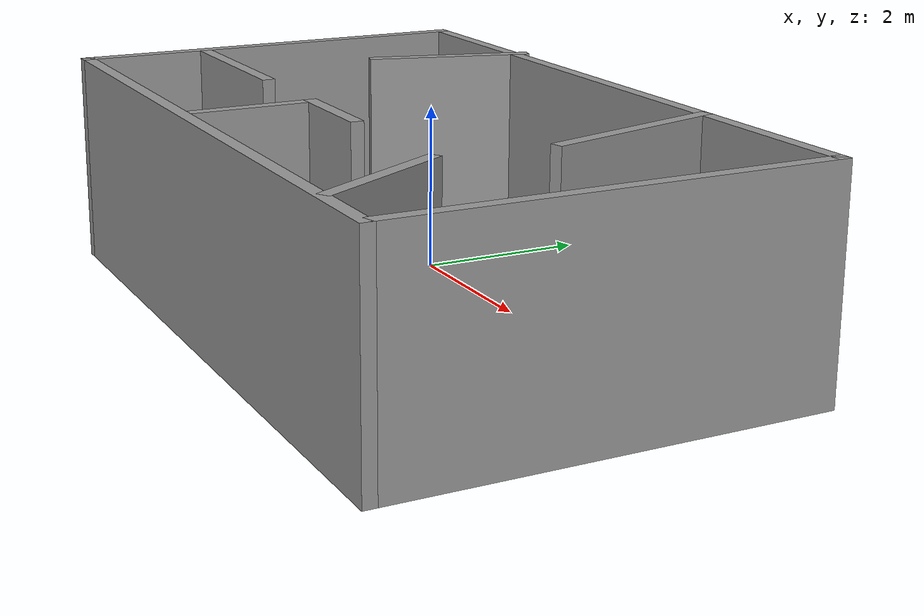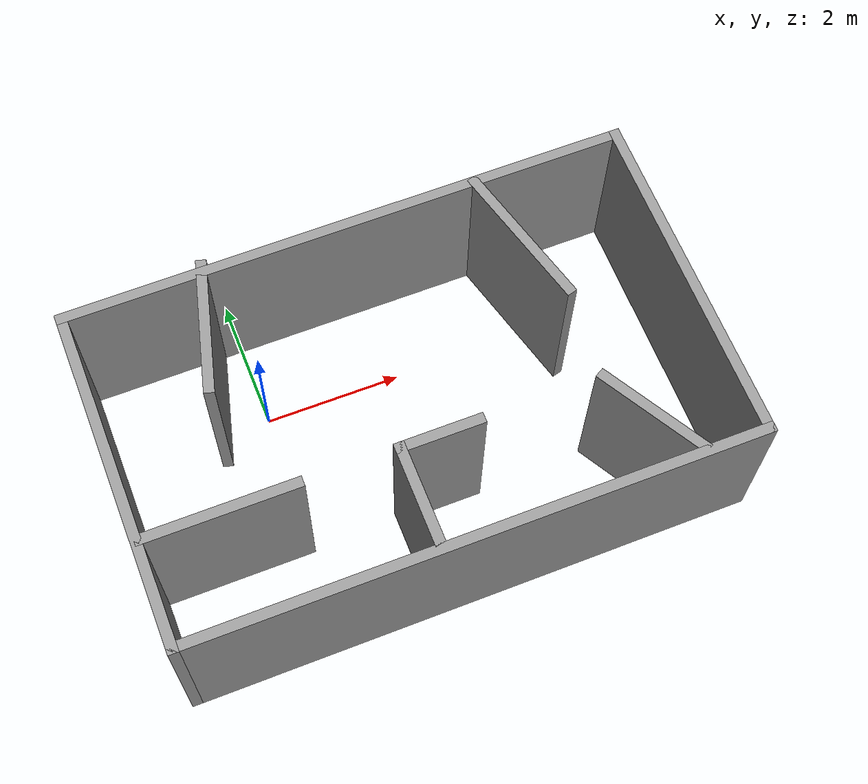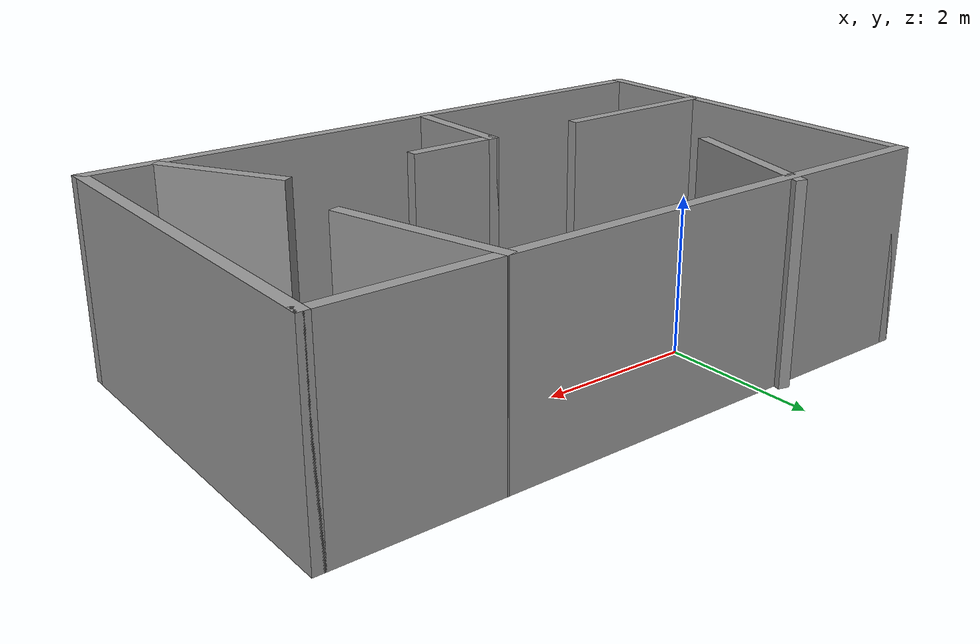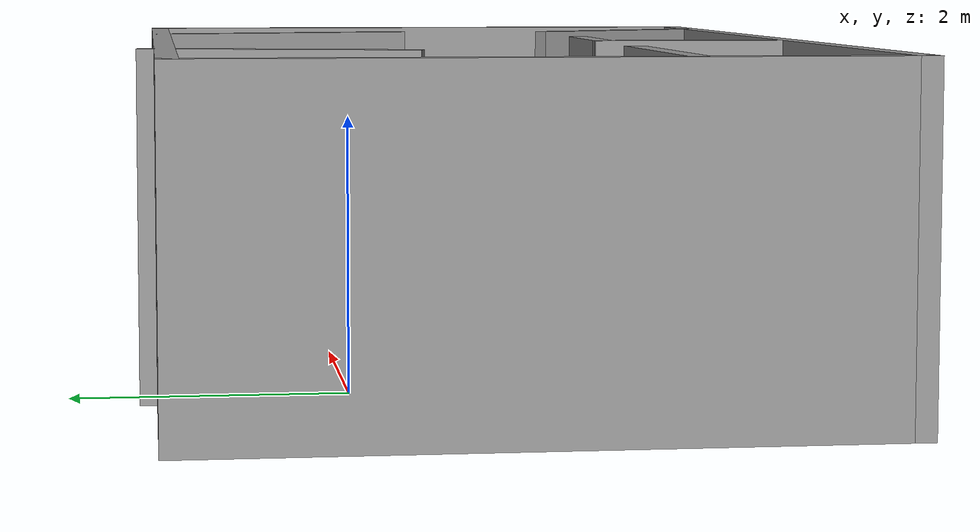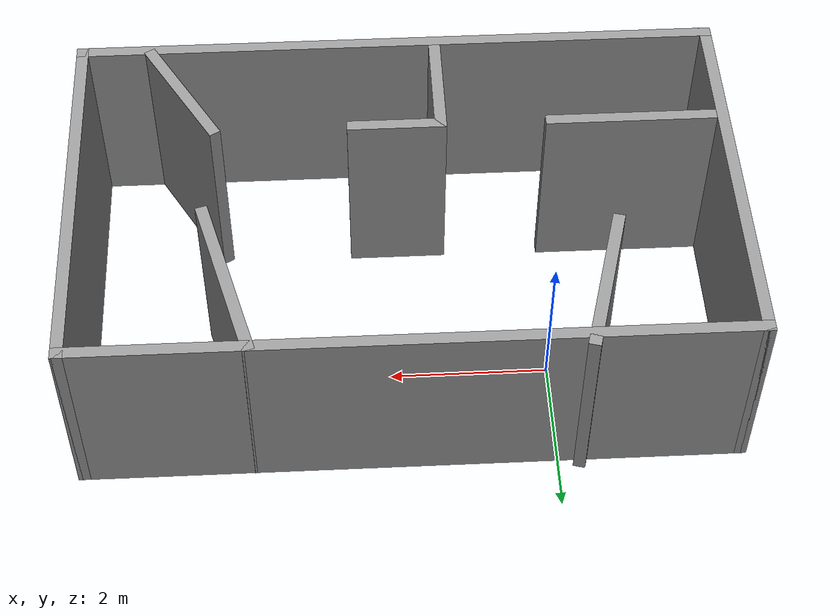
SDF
<?xml version='1.0'?>
<sdf version='1.7'>
  <model name='mcl_world'>
    <gui fullscreen='0'>
      <camera name='user_camera'>
        <pose>-1.87622 -1.88519 2.12467 -0 0.351642 0.72904</pose>
        <view_controller>orbit</view_controller>
        <projection_type>perspective</projection_type>
      </camera>
    </gui>
    <pose>1.77 -1.0638 0 0 -0 0</pose>
    <link name='Wall_0'>
      <collision name='Wall_0_Collision'>
        <geometry>
          <box>
            <size>5 0.15 2.5</size>
          </box>
        </geometry>
        <pose>0 0 1.25 0 -0 0</pose>
      </collision>
      <visual name='Wall_0_Visual'>
        <pose>0 0 1.25 0 -0 0</pose>
        <geometry>
          <box>
            <size>5 0.15 2.5</size>
          </box>
        </geometry>
        <material>
          <script>
            <uri>file://media/materials/scripts/gazebo.material</uri>
            <name>Gazebo/Grey</name>
          </script>
          <ambient>1 1 1 1</ambient>
        </material>
        <meta>
          <layer>0</layer>
        </meta>
      </visual>
      <pose>-4.05 -0.0612 0 0 -0 1.5708</pose>
    </link>
    <link name='Wall_1'>
      <collision name='Wall_1_Collision'>
        <geometry>
          <box>
            <size>8.25 0.15 2.5</size>
          </box>
        </geometry>
        <pose>0 0 1.25 0 -0 0</pose>
      </collision>
      <visual name='Wall_1_Visual'>
        <pose>0 0 1.25 0 -0 0</pose>
        <geometry>
          <box>
            <size>8.25 0.15 2.5</size>
          </box>
        </geometry>
        <material>
          <script>
            <uri>file://media/materials/scripts/gazebo.material</uri>
            <name>Gazebo/Grey</name>
          </script>
          <ambient>1 1 1 1</ambient>
        </material>
        <meta>
          <layer>0</layer>
        </meta>
      </visual>
      <pose>-0 2.3638 0 0 -0 0</pose>
    </link>
    <link name='Wall_10'>
      <collision name='Wall_10_Collision'>
        <geometry>
          <box>
            <size>2.25 0.15 2.5</size>
          </box>
        </geometry>
        <pose>0 0 1.25 0 -0 0</pose>
      </collision>
      <visual name='Wall_10_Visual'>
        <pose>0 0 1.25 0 -0 0</pose>
        <geometry>
          <box>
            <size>2.25 0.15 2.5</size>
          </box>
        </geometry>
        <material>
          <script>
            <uri>file://media/materials/scripts/gazebo.material</uri>
            <name>Gazebo/Grey</name>
          </script>
          <ambient>1 1 1 1</ambient>
        </material>
        <meta>
          <layer>0</layer>
        </meta>
      </visual>
      <pose>2.17602 1.33947 0 0 -0 -1.309</pose>
    </link>
    <link name='Wall_12'>
      <collision name='Wall_12_Collision'>
        <geometry>
          <box>
            <size>1.75 0.15 2.5</size>
          </box>
        </geometry>
        <pose>0 0 1.25 0 -0 0</pose>
      </collision>
      <visual name='Wall_12_Visual'>
        <pose>0 0 1.25 0 -0 0</pose>
        <geometry>
          <box>
            <size>1.75 0.15 2.5</size>
          </box>
        </geometry>
        <material>
          <script>
            <uri>file://media/materials/scripts/gazebo.material</uri>
            <name>Gazebo/Grey</name>
          </script>
          <ambient>1 1 1 1</ambient>
        </material>
        <meta>
          <layer>0</layer>
        </meta>
      </visual>
      <pose>2.75331 -1.71839 0 0 -0 2.0944</pose>
    </link>
    <link name='Wall_14'>
      <collision name='Wall_14_Collision'>
        <geometry>
          <box>
            <size>2.25 0.15 2.5</size>
          </box>
        </geometry>
        <pose>0 0 1.25 0 -0 0</pose>
      </collision>
      <visual name='Wall_14_Visual'>
        <pose>0 0 1.25 0 -0 0</pose>
        <geometry>
          <box>
            <size>2.25 0.15 2.5</size>
          </box>
        </geometry>
        <material>
          <script>
            <uri>file://media/materials/scripts/gazebo.material</uri>
            <name>Gazebo/Grey</name>
          </script>
          <ambient>1 1 1 1</ambient>
        </material>
        <meta>
          <layer>0</layer>
        </meta>
      </visual>
      <pose>-2.94404 -1.00025 0 0 -0 0</pose>
    </link>
    <link name='Wall_2'>
      <collision name='Wall_2_Collision'>
        <geometry>
          <box>
            <size>5 0.15 2.5</size>
          </box>
        </geometry>
        <pose>0 0 1.25 0 -0 0</pose>
      </collision>
      <visual name='Wall_2_Visual'>
        <pose>0 0 1.25 0 -0 0</pose>
        <geometry>
          <box>
            <size>5 0.15 2.5</size>
          </box>
        </geometry>
        <material>
          <script>
            <uri>file://media/materials/scripts/gazebo.material</uri>
            <name>Gazebo/Grey</name>
          </script>
          <ambient>1 1 1 1</ambient>
        </material>
        <meta>
          <layer>0</layer>
        </meta>
      </visual>
      <pose>4.05 -0.0612 0 0 -0 -1.5708</pose>
    </link>
    <link name='Wall_3'>
      <collision name='Wall_3_Collision'>
        <geometry>
          <box>
            <size>8.25 0.15 2.5</size>
          </box>
        </geometry>
        <pose>0 0 1.25 0 -0 0</pose>
      </collision>
      <visual name='Wall_3_Visual'>
        <pose>0 0 1.25 0 -0 0</pose>
        <geometry>
          <box>
            <size>8.25 0.15 2.5</size>
          </box>
        </geometry>
        <material>
          <script>
            <uri>file://media/materials/scripts/gazebo.material</uri>
            <name>Gazebo/Grey</name>
          </script>
          <ambient>1 1 1 1</ambient>
        </material>
        <meta>
          <layer>0</layer>
        </meta>
      </visual>
      <pose>-0 -2.4862 0 0 -0 3.14159</pose>
    </link>
    <link name='Wall_5'>
      <collision name='Wall_5_Collision'>
        <geometry>
          <box>
            <size>2 0.15 2.5</size>
          </box>
        </geometry>
        <pose>0 0 1.25 0 -0 0</pose>
      </collision>
      <visual name='Wall_5_Visual'>
        <pose>0 0 1.25 0 -0 0</pose>
        <geometry>
          <box>
            <size>2 0.15 2.5</size>
          </box>
        </geometry>
        <material>
          <script>
            <uri>file://media/materials/scripts/gazebo.material</uri>
            <name>Gazebo/Grey</name>
          </script>
          <ambient>1 1 1 1</ambient>
        </material>
        <meta>
          <layer>0</layer>
        </meta>
      </visual>
      <pose>-2.29048 1.57586 0 0 -0 -1.8326</pose>
    </link>
    <link name='Wall_7'>
      <collision name='Wall_7_Collision'>
        <geometry>
          <box>
            <size>1.5 0.15 2.5</size>
          </box>
        </geometry>
        <pose>0 0 1.25 0 -0 0</pose>
      </collision>
      <visual name='Wall_7_Visual'>
        <pose>0 0 1.25 0 -0 0</pose>
        <geometry>
          <box>
            <size>1.5 0.15 2.5</size>
          </box>
        </geometry>
        <material>
          <script>
            <uri>file://media/materials/scripts/gazebo.material</uri>
            <name>Gazebo/Grey</name>
          </script>
          <ambient>1 1 1 1</ambient>
        </material>
        <meta>
          <layer>0</layer>
        </meta>
      </visual>
      <pose>-0.501322 -1.68995 0 0 -0 1.5708</pose>
    </link>
    <link name='Wall_8'>
      <collision name='Wall_8_Collision'>
        <geometry>
          <box>
            <size>1.25 0.15 2.5</size>
          </box>
        </geometry>
        <pose>0 0 1.25 0 -0 0</pose>
      </collision>
      <visual name='Wall_8_Visual'>
        <pose>0 0 1.25 0 -0 0</pose>
        <geometry>
          <box>
            <size>1.25 0.15 2.5</size>
          </box>
        </geometry>
        <material>
          <script>
            <uri>file://media/materials/scripts/gazebo.material</uri>
            <name>Gazebo/Grey</name>
          </script>
          <ambient>1 1 1 1</ambient>
        </material>
        <meta>
          <layer>0</layer>
        </meta>
      </visual>
      <pose>0.048678 -1.01495 0 0 -0 0</pose>
    </link>
    <static>1</static>
  </model>
</sdf>
